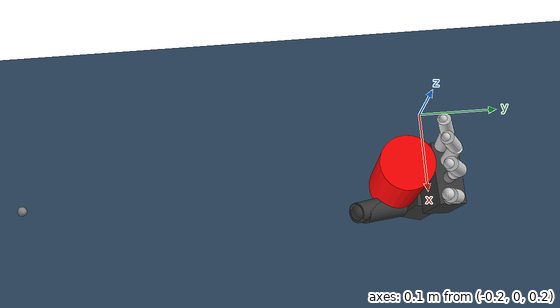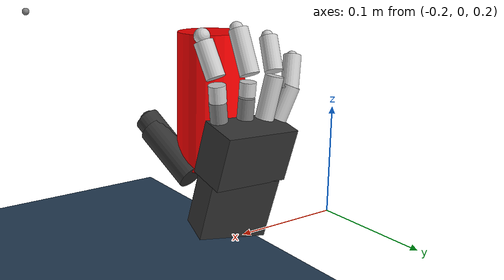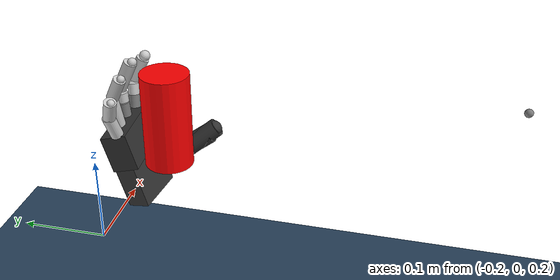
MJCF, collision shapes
<mujoco model="mia_hand_right cylinder scene">
  <include file="mia_hand_right_grasp_frame.xml"/>

  <!-- Camera framing: centre between the default hand pose and the target cylinder. -->
  <statistic extent="0.4" center="-0.1 -0.025 0.255"/>

  <visual>
    <headlight diffuse="0.6 0.6 0.6" ambient="0.3 0.3 0.3" specular="0 0 0"/>
    <rgba haze="0.15 0.25 0.35 1"/>
    <global azimuth="120" elevation="-20"/>
  </visual>

  <asset>
    <texture type="skybox" builtin="gradient" rgb1="0.3 0.5 0.7" rgb2="0 0 0"
      width="512" height="3072"/>
    <texture type="2d" name="groundplane" builtin="checker" mark="edge"
      rgb1="0.2 0.3 0.4" rgb2="0.1 0.2 0.3" markrgb="0.8 0.8 0.8" width="300" height="300"/>
    <material name="groundplane" texture="groundplane" texuniform="true"
      texrepeat="5 5" reflectance="0.2"/>
  </asset>

  <worldbody>
    <light pos="0 0 3" dir="0 0 -1" directional="true"/>
    <geom name="floor" size="0 0 .125" type="plane" material="groundplane"
      conaffinity="15" condim="3"/>
    <body name="target_cylinder_body" pos="-0.1 -0.0499124 0.3100398">
      <geom name="target_cylinder" type="cylinder" size="0.03 0.06"
        rgba="1 0 0 1" contype="0" conaffinity="0"/>
    </body>

    <!-- Dynamic-mode consumers should use the camera TF and world-frame point cloud
         rather than any static camera transform constants. -->
    <body name="depth_cam_body" pos="-0.08 -0.46 0.36" euler="-1.67079632679 0 0">
      <!-- Named site used as the IMU reference point (origin of depth_cam_body) -->
      <site name="imu_site" pos="0 0 0" size="0.005"/>
      <camera
        name="front_depth_cam"
        pos="0 0 0"
        euler="3.14 0 0"
        fovy="58"/>
      <geom name="d435_visual" type="mesh" mesh="d435_body"
        pos="0 0 0" euler="0 0 3.14159"
        contype="0" conaffinity="0" group="0" rgba="0.2 0.2 0.2 1"/>
    </body>
  </worldbody>
</mujoco>

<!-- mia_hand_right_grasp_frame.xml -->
<mujoco model="mia_hand_right">
  <compiler angle="radian" meshdir="assets/"/>

  <extension>
    <plugin plugin="mujoco.mia_hand.index_thumb_actuator">
      <instance name="index_thumb_actuator_r">
        <config key="index_flx_jnt_name" value="j_index_fle_r"/>
        <config key="thumb_opp_jnt_name" value="j_thumb_opp_r"/>
        <config key="thumb_opp_start_index_angle" value="-0.06"/>
        <config key="thumb_opp_end_index_angle" value="0.08"/>
      </instance>
    </plugin>
  </extension>

  <default>
    <default class="visual_r">
      <geom type="mesh" contype="0" conaffinity="0" group="0" density="0"/>
    </default>
    <default class="collision_r">
      <geom group="3"/>
    </default>
  </default>

  <asset>
    <mesh name="index_finger" content_type="model/obj" file="index_finger_r.obj" scale="0.000999987 0.000999987 0.000999987"/>
    <mesh name="index_tip" content_type="model/obj" file="index_tip_r.obj" scale="0.000999987 0.000999987 0.000999987"/>
    <mesh name="little_finger" content_type="model/obj" file="little_finger_r.obj" scale="0.000999987 0.000999987 0.000999987"/>
    <mesh name="little_tip" content_type="model/obj" file="little_tip_r.obj" scale="0.000999987 0.000999987 0.000999987"/>
    <mesh name="middle_finger" content_type="model/obj" file="middle_finger_r.obj" scale="0.000999987 0.000999987 0.000999987"/>
    <mesh name="middle_tip" content_type="model/obj" file="middle_tip_r.obj" scale="0.000999987 0.000999987 0.000999987"/>
    <mesh name="dorsum_simple" content_type="model/obj" file="dorsum_simple_r.obj" scale="0.0766738 0.104275 0.0766738"/>
    <mesh name="palm_simple" content_type="model/obj" file="palm_simple_r.obj" scale="0.122027 0.122027 0.122027"/>
    <mesh name="wrist" content_type="model/obj" file="wrist_r.obj" scale="0.000999999 0.000999999 0.000999999"/>
    <mesh name="ring_finger" content_type="model/obj" file="ring_finger_r.obj" scale="0.000999987 0.000999987 0.000999987"/>
    <mesh name="ring_tip" content_type="model/obj" file="ring_tip_r.obj" scale="0.000999987 0.000999987 0.000999987"/>
    <mesh name="thumb_cover" content_type="model/obj" file="thumb_cover_r.obj" scale="0.000999988 0.000999987 0.000999987"/>
    <mesh name="thumb_frame" content_type="model/obj" file="thumb_frame_r.obj" scale="0.000999988 0.000999987 0.000999987"/>
    <mesh name="thumb_metacarpus" content_type="model/obj" file="thumb_metacarpus_r.obj" scale="0.000999987 0.000999987 0.000999987"/>
    <mesh name="d435_body" file="d435.stl" scale="0.001 0.001 0.001"/>
  </asset>

  <worldbody>
    <body name="wrist_body" pos="-0.1 -0.02 0.18" quat="0.707388 0.706825 0 0">
    <body name="palm_r" pos="0 0 0">
      <joint name="j_wrist_rotation" type="hinge" axis="0 1 0" range="-3.14159 3.14159" damping="0.5"/>
      <inertial pos="0.00268 0.0671 -0.016" quat="0.5 0.5 -0.5 0.5" mass="0.274" diaginertia="0.000343 0.000301 0.00013"/>
      <geom class="visual_r" pos="0.00303524 0.075372 -0.0252042" quat="0.991445 -0.130526 0 0" rgba="0.0150198 0.0150198 0.0150198 1" mesh="dorsum_simple"/>
      <geom class="visual_r" pos="0.00380022 0.0659745 -0.0120549" quat="0.991445 -0.130526 0 0" rgba="0.0150198 0.0150198 0.0150198 1" mesh="palm_simple"/>
      <geom class="visual_r" pos="-0.04 0.0152746 -0.0238927" quat="0.793353 0.608761 0 0" rgba="0.202126 0.202126 0.202126 1" mesh="wrist"/>
      <geom class="collision_r" name="collision_hand_distal" size="0.0363205 0.0237669 0.0166305" pos="0.000396326 0.0951293 -0.021127" quat="0.991121 -0.130355 0.00905396 0.0246053" type="box" rgba="0.202126 0.202126 0.202126 1"/>
      <geom class="collision_r" name="collision_hand_proximal" size="0.0312073 0.0281912 0.0142893" pos="0.00128842 0.0462266 -0.00568906" quat="0.986558 -0.127037 -0.0954183 0.0382022" type="box" rgba="0.202126 0.202126 0.202126 1"/>
      <body name="hand_ee_link_r" pos="0 0.13 0.03" quat="0.947651 -0.319309 0 0">
        <inertial pos="0 0 0" mass="0" diaginertia="0 0 0"/>
      </body>
      <body name="thumb_opp_r" pos="0.013074 0.0681082 -0.00194942" quat="0.749742 0.617038 0.239056 -0.00192418">
        <inertial pos="0.00026099 0.00762 0.00122" quat="0.5 0.5 -0.5 0.5" mass="0.013" diaginertia="1.15e-06 1.12e-06 1.2e-07"/>
        <joint name="j_thumb_opp_r" pos="0 0 0" axis="-6e-08 1.7e-08 1" range="-0.628 0" actuatorfrcrange="-3.5 3.5" damping="0.2"/>
        <geom class="visual_r" pos="-0.0545238 -0.0486951 0.0273073" quat="0.970439 -0.0331148 -0.188484 0.147054" rgba="0.202126 0.202126 0.202126 1" mesh="thumb_metacarpus"/>
        <body name="thumb_sensor" pos="-5.942e-06 0.00899766 2.453e-06" quat="0.707107 0.707107 -6.36396e-09 -7.77817e-08">
          <inertial pos="-1.5e-08 -9e-09 -4e-09" quat="0.707107 0.707107 0 0" mass="0.000643" diaginertia="1.5e-08 1.5e-08 8e-09"/>
          <body name="thumb_fle_r" pos="-2.7426e-05 -1.0543e-05 -0.00898979" quat="0.379369 -0.596773 -0.379359 0.59668">
            <inertial pos="0.0127715 0.0295019 0.000170548" quat="0.499938 0.500062 -0.499886 0.500114" mass="0.0592" diaginertia="4.1e-05 4e-05 3e-06"/>
            <joint name="j_thumb_fle_r" pos="0 0 0" axis="-6e-08 1.7e-08 1" range="0 1.1345" actuatorfrcrange="-3.5 3.5" damping="0.1"/>
            <geom class="visual_r" pos="-0.00356782 -0.0719755 0.0544858" quat="0.827607 0.198854 0.522146 -0.0537453" rgba="0.8 0.8 0.8 1" mesh="thumb_cover"/>
            <geom class="visual_r" pos="-0.00356782 -0.0719755 0.0544858" quat="0.827607 0.198854 0.522146 -0.0537453" rgba="0.202126 0.202126 0.202126 1" mesh="thumb_frame"/>
            <geom class="collision_r" name="collision_thumb_distal_r" size="0.0116941 0.0275092" pos="0.0156689 0.0473846 0.00140391" quat="0.736368 0.669124 0.0564767 -0.0827358" type="cylinder" rgba="0.202126 0.202126 0.202126 1"/>
            <geom class="collision_r" name="collision_thumb_proximal_r" size="0.0127144 0.0299092" pos="0.0156133 0.0326075 6.2179e-05" quat="0.707582 0.695412 0.0575247 -0.111445" type="cylinder" rgba="0.202126 0.202126 0.202126 1"/>
            <geom class="collision_r" name="collision_thumb_tip_r" size="0.0105148" pos="0.0157022 0.069964 -0.00075977" quat="0.873882 -0.262638 0.209606 0.351306" rgba="0.202126 0.202126 0.202126 1"/>
          </body>
        </body>
      </body>
      <body name="index_fle_r" pos="0.0263055 0.110217 -0.0215208" quat="0.745782 0.0196446 0.660056 -0.0880325">
        <inertial pos="0 0 0" quat="0.70716 0.707023 0.00461575 0.00466907" mass="0.01113" diaginertia="1.40021e-06 1.36e-06 1.96792e-07"/>
        <joint name="j_index_fle_r" pos="0 0 0" axis="-6e-08 1.7e-08 1" range="-1.4 1.4" actuatorfrcrange="-1.75 1.75" damping="0.1"/>
        <geom class="collision_r" name="collision_index_pre_sensor_r" size="0.0071285 0.00848527" pos="0.000159719 0.023607 0.00150843" quat="0.513726 0.530536 -0.469438 0.483989" type="cylinder"/>
        <body name="index_sensor_r" pos="-0.000399255 0.024237 -0.000183955" quat="0.996301 0.000323181 -7.7074e-05 0.0859352">
          <inertial pos="0 0 0" quat="0.449921 0.554664 -0.438757 0.545354" mass="0.01765" diaginertia="2.19001e-05 2.16199e-05 7.8994e-07"/>
          <geom class="visual_r" pos="-0.016737 -0.126896 -0.0512699" quat="0.642105 0.396242 -0.505804 0.418157" rgba="0.0150198 0.0150198 0.0150198 1" mesh="index_finger"/>
          <geom class="visual_r" pos="-0.016737 -0.126896 -0.0512699" quat="0.642105 0.396242 -0.505804 0.418157" rgba="0.8 0.8 0.8 1" mesh="index_tip"/>
          <geom class="collision_r" name="collision_index_distal_r" size="0.00795739 0.0151856" pos="-0.00189978 0.0412638 0.00138143" quat="0.415019 0.601436 -0.383289 0.56491" type="cylinder" rgba="0.8 0.8 0.8 1"/>
          <geom class="collision_r" name="collision_index_post_sensor_r" size="0.0071285 0.00713106" pos="0.00270223 0.0145998 0.00127782" quat="0.555422 0.47484 -0.515383 0.447676" type="cylinder" rgba="0.8 0.8 0.8 1"/>
          <geom class="collision_r" name="collision_index_tip_r" size="0.00662717" pos="-0.0104493 0.0596592 0.000670571" quat="0.735087 0.076755 -0.646393 0.189557" rgba="0.8 0.8 0.8 1"/>
        </body>
      </body>
      <body name="middle_fle_r" pos="0.00514942 0.113555 -0.0243453" quat="0.706434 -0.0308436 0.706434 -0.0308435">
        <inertial pos="0 0 0" quat="0.707107 0.707093 -0.00307185 -0.00306118" mass="0.0121" diaginertia="1.42009e-06 1.3e-06 1.97908e-07"/>
        <joint name="j_mrl_fle_r" pos="0 0 0" axis="-6e-08 1.7e-08 1" range="0 1.39626" actuatorfrcrange="-1.75 1.75" damping="0.1"/>
        <geom class="collision_r" name="collision_middle_pre_sensor_r" size="0.00683449 0.00891176" pos="5.4862e-05 0.0200986 0.000735957" quat="0.499613 0.500386 -0.499613 0.500386" type="cylinder"/>
        <body name="middle_sensor_r" pos="0.000444004 0.0254975 5.81e-07" quat="1 9e-09 1.035e-07 -1.5e-08">
          <inertial pos="0 0 0" quat="0.439409 0.547188 -0.4493 0.552842" mass="0.0177" diaginertia="2.19002e-05 2.162e-05 7.89803e-07"/>
          <geom class="visual_r" pos="0.00767081 -0.123443 -0.04515" quat="0.541675 0.454519 -0.541675 0.454519" rgba="0.0150198 0.0150198 0.0150198 1" mesh="middle_finger"/>
          <geom class="visual_r" pos="0.00767081 -0.123443 -0.04515" quat="0.541675 0.454519 -0.541675 0.454519" rgba="0.8 0.8 0.8 1" mesh="middle_tip"/>
          <geom class="collision_r" name="collision_middle_distal_r" size="0.00812763 0.0191194" pos="-0.00865379 0.0394251 0.000735376" quat="0.354525 0.611811 -0.354525 0.611811" type="cylinder" rgba="0.8 0.8 0.8 1"/>
          <geom class="collision_r" name="collision_middle_post_sensor_r" size="0.00683449 0.00591472" pos="-0.000414368 0.0109209 0.000735376" quat="0.499613 0.500386 -0.499613 0.500386" type="cylinder" rgba="0.8 0.8 0.8 1"/>
          <geom class="collision_r" name="collision_middle_tip_r" size="0.00562753" pos="-0.0205397 0.0564037 0.000735376" quat="0.682871 0.183541 -0.682871 0.183541" rgba="0.8 0.8 0.8 1"/>
        </body>
      </body>
      <body name="ring_fle_r" pos="-0.0122504 0.112029 -0.0239364" quat="0.690637 -0.0971483 0.716264 0.0234158">
        <inertial pos="-0.00112 0.0264 0.000203993" quat="0.5 0.5 -0.5 0.5" mass="0.0263" diaginertia="1.61e-05 1.577e-05 9.02e-07"/>
        <joint name="j_ring_fle_r" pos="0 0 0" axis="-6e-08 1.7e-08 1" range="0 1.39626" actuatorfrcrange="-1.75 1.75" damping="0.1"/>
        <geom class="visual_r" pos="0.0110461 -0.090067 -0.0435588" quat="0.488779 0.497506 -0.582505 0.417457" rgba="0.0150198 0.0150198 0.0150198 1" mesh="ring_finger"/>
        <geom class="visual_r" pos="0.0110461 -0.090067 -0.0435588" quat="0.488779 0.497506 -0.582505 0.417457" rgba="0.8 0.8 0.8 1" mesh="ring_tip"/>
        <geom class="collision_r" name="collision_ring_distal_r" size="0.00760354 0.0149668" pos="-0.00852139 0.0632753 0.000219088" quat="0.344488 0.614584 -0.34708 0.618991" type="cylinder" rgba="0.8 0.8 0.8 1"/>
        <geom class="collision_r" name="collision_ring_proximal_r" size="0.00782782 0.0184141" pos="0.00118691 0.0289251 0.000219103" quat="0.5 0.5 -0.5 0.5" type="cylinder" rgba="0.8 0.8 0.8 1"/>
        <geom class="collision_r" name="collision_ring_tip_r" size="0.00487311" pos="-0.0182312 0.0766421 -0.000189718" quat="0.664463 0.241845 -0.696364 0.122788" rgba="0.8 0.8 0.8 1"/>
      </body>
      <body name="little_fle_r" pos="-0.02786 0.107325 -0.0206051" quat="0.684193 -0.193957 0.701244 0.0501746">
        <inertial pos="-0.00155 0.0208 -3.5793e-05" quat="0.5 0.5 -0.5 0.5" mass="0.0207" diaginertia="7.9e-06 7.686e-06 6.52e-07"/>
        <joint name="j_little_fle_r" pos="0 0 0" axis="-6e-08 1.7e-08 1" range="0 1.39626" actuatorfrcrange="-1.75 1.75" damping="0.1"/>
        <geom class="visual_r" pos="0.021799 -0.0798844 -0.0421284" quat="0.424734 0.570387 -0.586878 0.387084" rgba="0.0150198 0.0150198 0.0150198 1" mesh="little_finger"/>
        <geom class="visual_r" pos="0.021799 -0.0798844 -0.0421284" quat="0.424734 0.570387 -0.586878 0.387084" rgba="0.8 0.8 0.8 1" mesh="little_tip"/>
        <geom class="collision_r" name="collision_little_distal_r" size="0.00760354 0.0149668" pos="-0.00907162 0.0523633 0.000405859" quat="0.378417 0.606914 -0.369575 0.593186" type="cylinder" rgba="0.8 0.8 0.8 1"/>
        <geom class="collision_r" name="collision_little_proximal_r" size="0.00782782 0.015221" pos="-0.00197874 0.0273017 -4.4674e-05" quat="0.492576 0.522025 -0.478045 0.506292" type="cylinder" rgba="0.8 0.8 0.8 1"/>
        <geom class="collision_r" name="collision_little_tip_r" size="0.00484472" pos="-0.0165956 0.064732 -0.000363789" quat="0.653774 0.266396 -0.707705 0.0276879" rgba="0.8 0.8 0.8 1"/>
      </body>

    </body>   <!-- palm_r -->
    </body>   <!-- wrist_body -->
  </worldbody>

  <equality>
    <joint joint1="j_ring_fle_r"   joint2="j_mrl_fle_r"/>
    <joint joint1="j_little_fle_r" joint2="j_mrl_fle_r"/>
  </equality>

  <contact>
    <exclude body1="palm_r" body2="thumb_fle_r"/>
    <exclude body1="palm_r" body2="thumb_opp_r"/>
    <exclude body1="palm_r" body2="index_fle_r"/>
    <exclude body1="palm_r" body2="middle_fle_r"/>
    <exclude body1="palm_r" body2="ring_fle_r"/>
    <exclude body1="palm_r" body2="little_fle_r"/>
  </contact>

  <actuator>
    <position name="thumb_fle_pos_r" joint="j_thumb_fle_r" inheritrange="1"/>
    <plugin name="index_fle_pos_r" joint="j_index_fle_r" plugin="mujoco.mia_hand.index_thumb_actuator" instance="index_thumb_actuator_r"/>
    <position name="mrl_fle_pos_r" joint="j_mrl_fle_r" inheritrange="1"/>
    <position name="wrist_pos_r" joint="j_wrist_rotation" kp="10"/>
  </actuator>
</mujoco>
